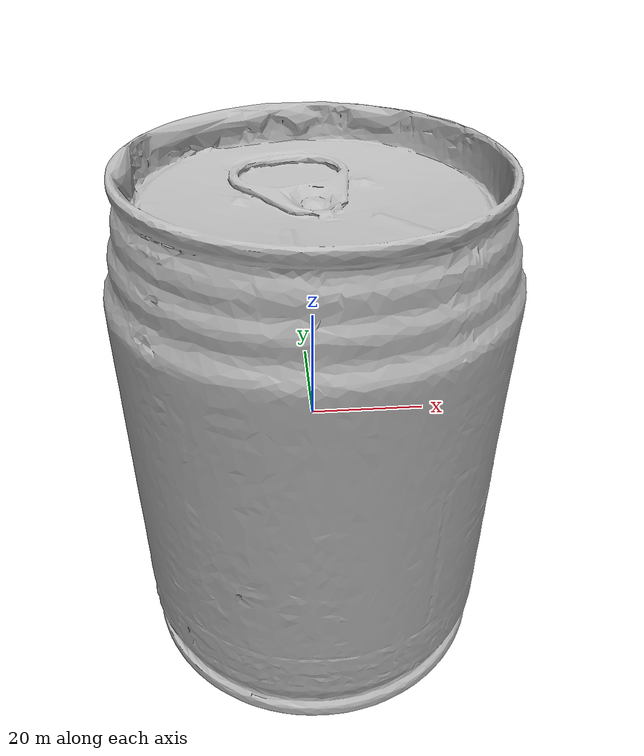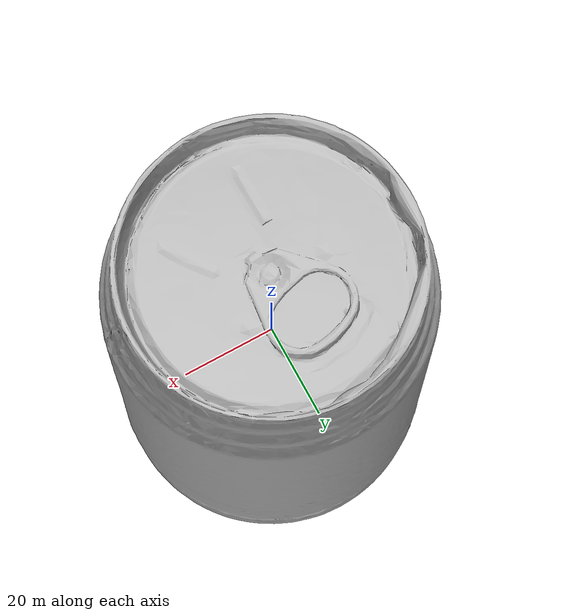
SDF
<sdf version="1.4">
 <world name="default">
  <light name="light1" type="point">
   <pose>0 0 1 0 0 0</pose>
   <diffuse>3 3 3 1</diffuse>
   <specular>3 3 3 1</specular>
  </light>
  <light name="light2" type="point">
   <pose>0 0.5 2 0 0 0</pose>
   <diffuse>1 1 1 1</diffuse>
   <specular>1 1 1 1</specular>
  </light>
  <light name="light3" type="point">
   <pose>0 0.5 2 0 0 0</pose>
   <diffuse>3 3 3 1</diffuse>
   <specular>3 3 3 1</specular>
  </light>
  <scene><ambient>0.7 0.7 0.7</ambient></scene>
  <model name="box1">
   <link name="link_box1">
    <collision name="default">
     <geometry>
      <mesh><uri>model://wooden_puzzle1/collision_meshes/collision.obj</uri><scale>1.0 1.0 1.0</scale></mesh>
     </geometry>
     <surface>
      <friction><ode><mu>0.5</mu><mu2>0.5</mu2></ode></friction>
      <contact><ode><max_vel>0</max_vel><min_depth>0.0001</min_depth><kp>1e8</kp></ode></contact>
     </surface>
    </collision>
    <visual name="default">
     <geometry>
      <mesh><uri>model://wooden_puzzle1/visual_meshes/visual.dae</uri><scale>1.0 1.0 1.0</scale></mesh>
     </geometry>
    </visual>
    <inertial>
     <mass>0.025116289034485817</mass>
     <pose>-0.00017350679263472557 7.972260937094688e-05 -9.191555000143126e-05 -0.07784885804399136 -0.2636065522190298 -0.5528757227143044</pose>
     <inertia>
      <ixx>4.7387575e-06</ixx>
      <iyy>4.647534e-06</iyy>
      <izz>4.7029785e-06</izz>
      <ixy>0</ixy>
      <ixz>0</ixz>
      <iyz>0</iyz>
     </inertia>
    </inertial>
   </link>
   <pose>0.2214454710483551 -0.11729352921247482 0.01680200733244419 0.01051273156698597 -0.0094562061903844 0.5594568612669218</pose>
  </model>
  <model name="box3">
   <link name="link_box3">
    <collision name="default">
     <geometry>
      <mesh><uri>model://wooden_puzzle2/collision_meshes/collision.obj</uri><scale>1.0 1.0 1.0</scale></mesh>
     </geometry>
     <surface>
      <friction><ode><mu>0.5</mu><mu2>0.5</mu2></ode></friction>
      <contact><ode><max_vel>0</max_vel><min_depth>0.0001</min_depth><kp>1e8</kp></ode></contact>
     </surface>
    </collision>
    <visual name="default">
     <geometry>
      <mesh><uri>model://wooden_puzzle2/visual_meshes/visual.dae</uri><scale>1.0 1.0 1.0</scale></mesh>
     </geometry>
    </visual>
    <inertial>
     <mass>0.025376593694090843</mass>
     <pose>2.7402536943554878e-05 4.997663199901581e-05 6.587122334167361e-05 -0.1920355258808483 0.6112750807505014 -0.6338716229052327</pose>
     <inertia>
      <ixx>4.7172375e-06</ixx>
      <iyy>4.8472266e-06</iyy>
      <izz>4.778271e-06</izz>
      <ixy>0</ixy>
      <ixz>0</ixz>
      <iyz>0</iyz>
     </inertia>
    </inertial>
   </link>
   <pose>0.116895891726017 -0.3814052939414978 0.016917729750275612 0.020848835282904682 0.000720695254447194 1.682060945367214</pose>
  </model>
  <model name="can1">
   <link name="link_can1">
    <collision name="default">
     <geometry>
      <mesh><uri>model://redbull/collision_meshes/collision.obj</uri><scale>1.0 1.0 1.0</scale></mesh>
     </geometry>
     <surface>
      <friction><ode><mu>0.5</mu><mu2>0.5</mu2></ode></friction>
      <contact><ode><max_vel>0</max_vel><min_depth>0.0001</min_depth><kp>1e8</kp></ode></contact>
     </surface>
    </collision>
    <visual name="default">
     <geometry>
      <mesh><uri>model://redbull/visual_meshes/visual.dae</uri><scale>1.0 1.0 1.0</scale></mesh>
     </geometry>
    </visual>
    <inertial>
     <mass>0.2544018626213074</mass>
     <pose>-2.2126756448415108e-05 -0.0001265947794308886 -0.0006860987632535398 0.0011376600102847077 -0.01080087162846833 0.5858227764205248</pose>
     <inertia>
      <ixx>0.00023919248</ixx>
      <iyy>0.00023939437</iyy>
      <izz>0.00014194298</izz>
      <ixy>0</ixy>
      <ixz>0</ixz>
      <iyz>0</iyz>
     </inertia>
    </inertial>
   </link>
   <pose>0.16653843224048615 -0.36674049496650696 0.04638563096523285 -0.010488523597938657 0.007261345168061545 -2.417987661911393</pose>
  </model>
  <model name="can2">
   <link name="link_can2">
    <collision name="default">
     <geometry>
      <mesh><uri>model://pepsi/collision_meshes/collision.obj</uri><scale>1.0 1.0 1.0</scale></mesh>
     </geometry>
     <surface>
      <friction><ode><mu>0.5</mu><mu2>0.5</mu2></ode></friction>
      <contact><ode><max_vel>0</max_vel><min_depth>0.0001</min_depth><kp>1e8</kp></ode></contact>
     </surface>
    </collision>
    <visual name="default">
     <geometry><mesh><uri>model://pepsi/visual_meshes/visual.dae</uri><scale>1.0 1.0 1.0</scale></mesh></geometry>
    </visual>
    <inertial>
     <mass>0.4552207291126251</mass>
     <pose>-7.5590331107378e-05 2.99312814604491e-05 -0.0003384356095921248 -0.0010679690801074441 -0.0021734768369219134 0.5674650232372158</pose>
     <inertia>
      <ixx>0.0009068869</ixx>
      <iyy>0.0009062263</iyy>
      <izz>0.00019301806</izz>
      <ixy>0</ixy>
      <ixz>0</ixz>
      <iyz>0</iyz>
     </inertia>
    </inertial>
   </link>
   <pose>-0.07040730118751526 -0.2429523468017578 0.07449633628129959 -1.8911975966069614e-05 2.1443242010228156e-06 3.0392597376966974</pose>
  </model>
  <physics type="ode">
   <max_contacts>50</max_contacts>
   <ode>
    <solver><type>quick</type><iters>75</iters></solver>
    <constraints>
     <contact_max_correcting_vel>0</contact_max_correcting_vel>
     <contact_surface_layer>0</contact_surface_layer>
    </constraints>
   </ode>
  </physics>
 </world>
</sdf>
